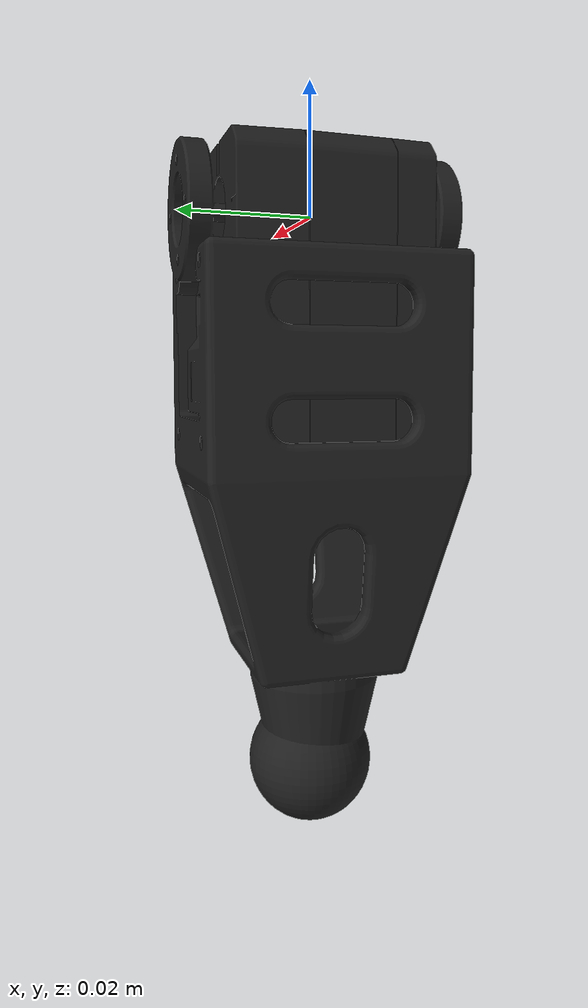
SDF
<?xml version="1.0" ?>

  <sdf version="1.6">
    <model name="scorpio_tibia">
      <link name="base">
      <pose>0 0 0 0 0 0</pose>
      <inertial>
        <pose>0 0 0 0 0 0</pose>
        <mass>0.1</mass>
        <inertia>
          <ixx>0.001</ixx>
          <iyy>0.001</iyy>
          <izz>0.001</izz>
          <ixy>0</ixy>
          <ixz>0</ixz>
          <iyz>0</iyz>
        </inertia>
      </inertial>
      <collision name="base_collision">
        <pose>0 0 0  0 0 0</pose>
        <geometry>
          <mesh>
            <uri>model://scorpio_tibia/meshes/scorpio_tibia.dae</uri>
          </mesh>
        </geometry>
        <surface>
          <friction>
            <ode>
              <mu>1</mu>
              <mu2>1</mu2>
              <kp>1e8</kp>
              <kd>1e4</kd>
            </ode>
          </friction>
          <contact>
            <ode>
              <soft_cfm>0.01</soft_cfm>
              <kp>1e5</kp>             <!-- 减小接触刚度 -->
              <kd>1e3</kd>             <!-- 增加阻尼 -->
            </ode>
          </contact>
        </surface>
      </collision>
      <visual name="base_visual">
        <geometry>
          <mesh>
            <uri>model://scorpio_tibia/meshes/scorpio_tibia.dae</uri>
          </mesh>
        </geometry>
        <material>
          <script>
            <name>Gazebo/Black</name>
          </script>
        </material>
      </visual>
    </link>

  </model>
</sdf>
